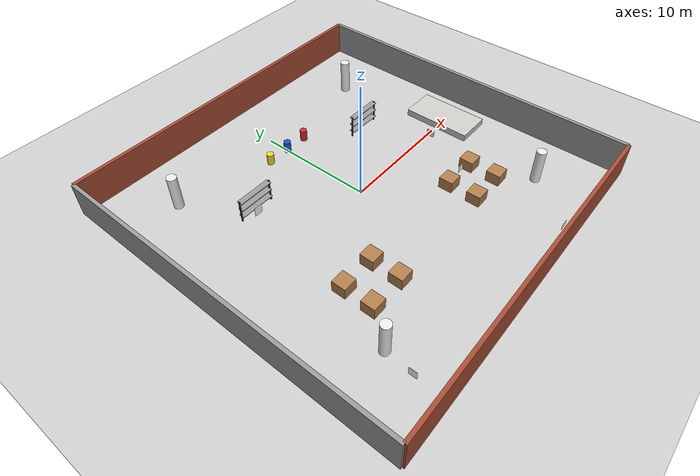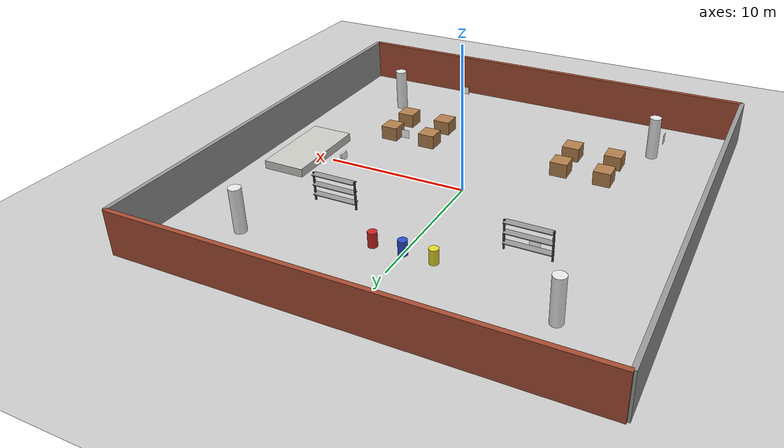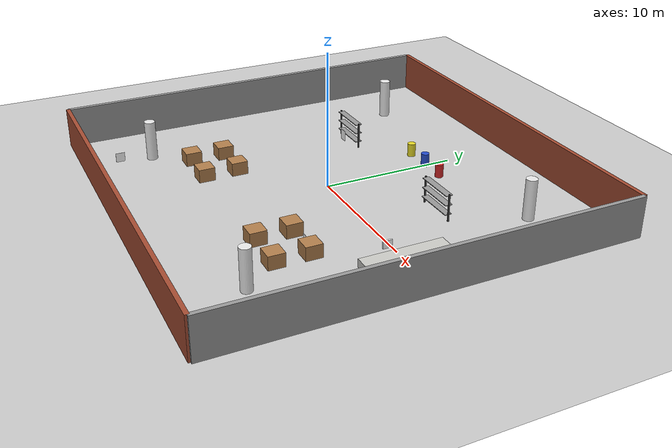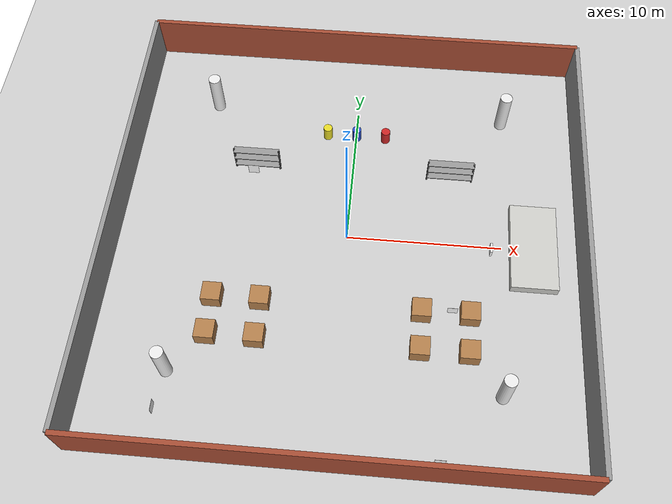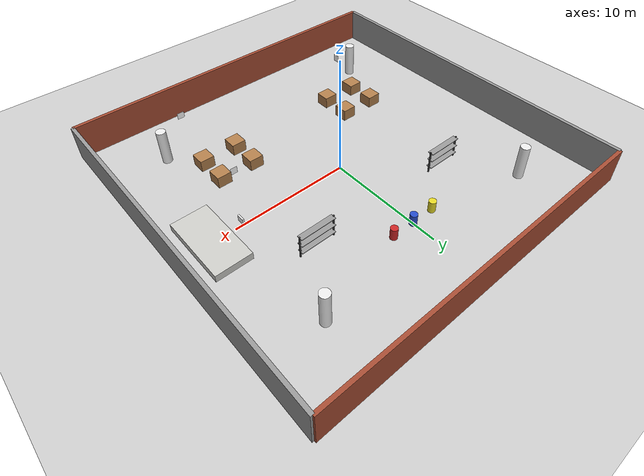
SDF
<sdf version="1.7">
 <world name="entrepot_complet">
  <model name="ground_plane">
   <static>1</static>
   <link name="link">
    <collision name="collision">
     <geometry><plane><normal>0 0 1</normal><size>100 100</size></plane></geometry>
     <surface><friction><ode><mu>100</mu><mu2>50</mu2></ode></friction></surface>
    </collision>
    <visual name="visual">
     <geometry><plane><normal>0 0 1</normal><size>100 100</size></plane></geometry>
     <material>
      <script><uri>file://media/materials/scripts/gazebo.material</uri><name>Gazebo/Grey</name></script>
     </material>
    </visual>
   </link>
  </model>
  <light name="sun" type="directional">
   <pose>0 0 10 0 -0 0</pose>
   <diffuse>0.8 0.8 0.8 1</diffuse>
   <specular>0.2 0.2 0.2 1</specular>
   <attenuation>
    <range>1000</range>
    <constant>0.9</constant>
    <linear>0.01</linear>
    <quadratic>0.001</quadratic>
   </attenuation>
   <direction>-0.5 0.1 -0.9</direction>
   <spot><inner_angle>0</inner_angle><outer_angle>0</outer_angle><falloff>0</falloff></spot>
  </light>
  <scene>
   <ambient>0.6 0.6 0.6 1</ambient>
   <background>0.7 0.8 0.9 1</background>
   <shadows>1</shadows>
   <grid>1</grid>
  </scene>
  <physics type="ode">
   <real_time_update_rate>1000</real_time_update_rate>
   <max_step_size>0.001</max_step_size>
   <real_time_factor>1</real_time_factor>
  </physics>
  <gravity>0 0 -9.8</gravity>
  <model name="wall_north">
   <static>1</static>
   <pose>0 15 1.5 0 -0 0</pose>
   <link name="link">
    <collision name="collision"><geometry><box><size>30 0.3 3</size></box></geometry></collision>
    <visual name="visual">
     <geometry><box><size>30 0.3 3</size></box></geometry>
     <material>
      <script><uri>file://media/materials/scripts/gazebo.material</uri><name>Gazebo/Bricks</name></script>
     </material>
    </visual>
   </link>
  </model>
  <model name="wall_south">
   <static>1</static>
   <pose>0 -15 1.5 0 -0 0</pose>
   <link name="link">
    <collision name="collision"><geometry><box><size>30 0.3 3</size></box></geometry></collision>
    <visual name="visual">
     <geometry><box><size>30 0.3 3</size></box></geometry>
     <material>
      <script><uri>file://media/materials/scripts/gazebo.material</uri><name>Gazebo/Bricks</name></script>
     </material>
    </visual>
   </link>
  </model>
  <model name="wall_east">
   <static>1</static>
   <pose>15 0 1.5 0 -0 0</pose>
   <link name="link">
    <collision name="collision"><geometry><box><size>0.3 30 3</size></box></geometry></collision>
    <visual name="visual">
     <geometry><box><size>0.3 30 3</size></box></geometry>
     <material>
      <script><uri>file://media/materials/scripts/gazebo.material</uri><name>Gazebo/GreyConcrete</name></script>
     </material>
    </visual>
   </link>
  </model>
  <model name="wall_west">
   <static>1</static>
   <pose>-15 0 1.5 0 -0 0</pose>
   <link name="link">
    <collision name="collision"><geometry><box><size>0.3 30 3</size></box></geometry></collision>
    <visual name="visual">
     <geometry><box><size>0.3 30 3</size></box></geometry>
     <material>
      <script><uri>file://media/materials/scripts/gazebo.material</uri><name>Gazebo/GreyConcrete</name></script>
     </material>
    </visual>
   </link>
  </model>
  <model name="column_1">
   <static>1</static>
   <pose>-10 10 1.5 0 -0 0</pose>
   <link name="link">
    <collision name="collision">
     <geometry><cylinder><radius>0.4</radius><length>3</length></cylinder></geometry>
    </collision>
    <visual name="visual">
     <geometry><cylinder><radius>0.4</radius><length>3</length></cylinder></geometry>
     <material>
      <script><uri>file://media/materials/scripts/gazebo.material</uri><name>Gazebo/White</name></script>
     </material>
    </visual>
   </link>
  </model>
  <model name="column_2">
   <static>1</static>
   <pose>10 10 1.5 0 -0 0</pose>
   <link name="link">
    <collision name="collision">
     <geometry><cylinder><radius>0.4</radius><length>3</length></cylinder></geometry>
    </collision>
    <visual name="visual">
     <geometry><cylinder><radius>0.4</radius><length>3</length></cylinder></geometry>
     <material>
      <script><uri>file://media/materials/scripts/gazebo.material</uri><name>Gazebo/White</name></script>
     </material>
    </visual>
   </link>
  </model>
  <model name="column_3">
   <static>1</static>
   <pose>-10 -10 1.5 0 -0 0</pose>
   <link name="link">
    <collision name="collision">
     <geometry><cylinder><radius>0.4</radius><length>3</length></cylinder></geometry>
    </collision>
    <visual name="visual">
     <geometry><cylinder><radius>0.4</radius><length>3</length></cylinder></geometry>
     <material>
      <script><uri>file://media/materials/scripts/gazebo.material</uri><name>Gazebo/White</name></script>
     </material>
    </visual>
   </link>
  </model>
  <model name="column_4">
   <static>1</static>
   <pose>10 -10 1.5 0 -0 0</pose>
   <link name="link">
    <collision name="collision">
     <geometry><cylinder><radius>0.4</radius><length>3</length></cylinder></geometry>
    </collision>
    <visual name="visual">
     <geometry><cylinder><radius>0.4</radius><length>3</length></cylinder></geometry>
     <material>
      <script><uri>file://media/materials/scripts/gazebo.material</uri><name>Gazebo/White</name></script>
     </material>
    </visual>
   </link>
  </model>
  <model name="pallet_1">
   <static>1</static>
   <pose>-8 -5 0.5 0 -0 0</pose>
   <link name="link">
    <collision name="collision"><geometry><box><size>1.2 1.2 1</size></box></geometry></collision>
    <visual name="visual">
     <geometry><box><size>1.2 1.2 1</size></box></geometry>
     <material>
      <script><uri>file://media/materials/scripts/gazebo.material</uri><name>Gazebo/Wood</name></script>
     </material>
    </visual>
   </link>
  </model>
  <model name="pallet_2">
   <static>1</static>
   <pose>-5 -5 0.5 0 -0 0</pose>
   <link name="link">
    <collision name="collision"><geometry><box><size>1.2 1.2 1</size></box></geometry></collision>
    <visual name="visual">
     <geometry><box><size>1.2 1.2 1</size></box></geometry>
     <material>
      <script><uri>file://media/materials/scripts/gazebo.material</uri><name>Gazebo/Wood</name></script>
     </material>
    </visual>
   </link>
  </model>
  <model name="pallet_3">
   <static>1</static>
   <pose>-8 -7.5 0.5 0 -0 0</pose>
   <link name="link">
    <collision name="collision"><geometry><box><size>1.2 1.2 1</size></box></geometry></collision>
    <visual name="visual">
     <geometry><box><size>1.2 1.2 1</size></box></geometry>
     <material>
      <script><uri>file://media/materials/scripts/gazebo.material</uri><name>Gazebo/Wood</name></script>
     </material>
    </visual>
   </link>
  </model>
  <model name="pallet_4">
   <static>1</static>
   <pose>-5 -7.5 0.5 0 -0 0</pose>
   <link name="link">
    <collision name="collision"><geometry><box><size>1.2 1.2 1</size></box></geometry></collision>
    <visual name="visual">
     <geometry><box><size>1.2 1.2 1</size></box></geometry>
     <material>
      <script><uri>file://media/materials/scripts/gazebo.material</uri><name>Gazebo/Wood</name></script>
     </material>
    </visual>
   </link>
  </model>
  <model name="pallet_5">
   <static>1</static>
   <pose>5 -5 0.5 0 -0 0</pose>
   <link name="link">
    <collision name="collision"><geometry><box><size>1.2 1.2 1</size></box></geometry></collision>
    <visual name="visual">
     <geometry><box><size>1.2 1.2 1</size></box></geometry>
     <material>
      <script><uri>file://media/materials/scripts/gazebo.material</uri><name>Gazebo/WoodPallet</name></script>
     </material>
    </visual>
   </link>
  </model>
  <model name="pallet_6">
   <static>1</static>
   <pose>8 -5 0.5 0 -0 0</pose>
   <link name="link">
    <collision name="collision"><geometry><box><size>1.2 1.2 1</size></box></geometry></collision>
    <visual name="visual">
     <geometry><box><size>1.2 1.2 1</size></box></geometry>
     <material>
      <script><uri>file://media/materials/scripts/gazebo.material</uri><name>Gazebo/WoodPallet</name></script>
     </material>
    </visual>
   </link>
  </model>
  <model name="pallet_7">
   <static>1</static>
   <pose>5 -7.5 0.5 0 -0 0</pose>
   <link name="link">
    <collision name="collision"><geometry><box><size>1.2 1.2 1</size></box></geometry></collision>
    <visual name="visual">
     <geometry><box><size>1.2 1.2 1</size></box></geometry>
     <material>
      <script><uri>file://media/materials/scripts/gazebo.material</uri><name>Gazebo/WoodPallet</name></script>
     </material>
    </visual>
   </link>
  </model>
  <model name="pallet_8">
   <static>1</static>
   <pose>8 -7.5 0.5 0 -0 0</pose>
   <link name="link">
    <collision name="collision"><geometry><box><size>1.2 1.2 1</size></box></geometry></collision>
    <visual name="visual">
     <geometry><box><size>1.2 1.2 1</size></box></geometry>
     <material>
      <script><uri>file://media/materials/scripts/gazebo.material</uri><name>Gazebo/WoodPallet</name></script>
     </material>
    </visual>
   </link>
  </model>
  <model name="shelf_1_left">
   <static>1</static>
   <pose>-8 5 1 0 -0 0</pose>
   <link name="link">
    <collision name="collision"><geometry><box><size>0.1 0.1 2</size></box></geometry></collision>
    <visual name="visual">
     <geometry><box><size>0.1 0.1 2</size></box></geometry>
     <material>
      <script><uri>file://media/materials/scripts/gazebo.material</uri><name>Gazebo/DarkGrey</name></script>
     </material>
    </visual>
   </link>
  </model>
  <model name="shelf_1_right">
   <static>1</static>
   <pose>-5 5 1 0 -0 0</pose>
   <link name="link">
    <collision name="collision"><geometry><box><size>0.1 0.1 2</size></box></geometry></collision>
    <visual name="visual">
     <geometry><box><size>0.1 0.1 2</size></box></geometry>
     <material>
      <script><uri>file://media/materials/scripts/gazebo.material</uri><name>Gazebo/DarkGrey</name></script>
     </material>
    </visual>
   </link>
  </model>
  <model name="shelf_1_bottom">
   <static>1</static>
   <pose>-6.5 5 0.5 0 -0 0</pose>
   <link name="link">
    <collision name="collision"><geometry><box><size>3 0.5 0.05</size></box></geometry></collision>
    <visual name="visual">
     <geometry><box><size>3 0.5 0.05</size></box></geometry>
     <material>
      <script><uri>file://media/materials/scripts/gazebo.material</uri><name>Gazebo/Grey</name></script>
     </material>
    </visual>
   </link>
  </model>
  <model name="shelf_1_middle">
   <static>1</static>
   <pose>-6.5 5 1.2 0 -0 0</pose>
   <link name="link">
    <collision name="collision"><geometry><box><size>3 0.5 0.05</size></box></geometry></collision>
    <visual name="visual">
     <geometry><box><size>3 0.5 0.05</size></box></geometry>
     <material>
      <script><uri>file://media/materials/scripts/gazebo.material</uri><name>Gazebo/Grey</name></script>
     </material>
    </visual>
   </link>
  </model>
  <model name="shelf_1_top">
   <static>1</static>
   <pose>-6.5 5 1.9 0 -0 0</pose>
   <link name="link">
    <collision name="collision"><geometry><box><size>3 0.5 0.05</size></box></geometry></collision>
    <visual name="visual">
     <geometry><box><size>3 0.5 0.05</size></box></geometry>
     <material>
      <script><uri>file://media/materials/scripts/gazebo.material</uri><name>Gazebo/Grey</name></script>
     </material>
    </visual>
   </link>
  </model>
  <model name="shelf_2_left">
   <static>1</static>
   <pose>5 5 1 0 -0 0</pose>
   <link name="link">
    <collision name="collision"><geometry><box><size>0.1 0.1 2</size></box></geometry></collision>
    <visual name="visual">
     <geometry><box><size>0.1 0.1 2</size></box></geometry>
     <material>
      <script><uri>file://media/materials/scripts/gazebo.material</uri><name>Gazebo/DarkGrey</name></script>
     </material>
    </visual>
   </link>
  </model>
  <model name="shelf_2_right">
   <static>1</static>
   <pose>8 5 1 0 -0 0</pose>
   <link name="link">
    <collision name="collision"><geometry><box><size>0.1 0.1 2</size></box></geometry></collision>
    <visual name="visual">
     <geometry><box><size>0.1 0.1 2</size></box></geometry>
     <material>
      <script><uri>file://media/materials/scripts/gazebo.material</uri><name>Gazebo/DarkGrey</name></script>
     </material>
    </visual>
   </link>
  </model>
  <model name="shelf_2_bottom">
   <static>1</static>
   <pose>6.5 5 0.5 0 -0 0</pose>
   <link name="link">
    <collision name="collision"><geometry><box><size>3 0.5 0.05</size></box></geometry></collision>
    <visual name="visual">
     <geometry><box><size>3 0.5 0.05</size></box></geometry>
     <material>
      <script><uri>file://media/materials/scripts/gazebo.material</uri><name>Gazebo/Grey</name></script>
     </material>
    </visual>
   </link>
  </model>
  <model name="shelf_2_middle">
   <static>1</static>
   <pose>6.5 5 1.2 0 -0 0</pose>
   <link name="link">
    <collision name="collision"><geometry><box><size>3 0.5 0.05</size></box></geometry></collision>
    <visual name="visual">
     <geometry><box><size>3 0.5 0.05</size></box></geometry>
     <material>
      <script><uri>file://media/materials/scripts/gazebo.material</uri><name>Gazebo/Grey</name></script>
     </material>
    </visual>
   </link>
  </model>
  <model name="shelf_2_top">
   <static>1</static>
   <pose>6.5 5 1.9 0 -0 0</pose>
   <link name="link">
    <collision name="collision"><geometry><box><size>3 0.5 0.05</size></box></geometry></collision>
    <visual name="visual">
     <geometry><box><size>3 0.5 0.05</size></box></geometry>
     <material>
      <script><uri>file://media/materials/scripts/gazebo.material</uri><name>Gazebo/Grey</name></script>
     </material>
    </visual>
   </link>
  </model>
  <model name="barrel_1">
   <static>1</static>
   <pose>-2 8 0.5 0 -0 0</pose>
   <link name="link">
    <collision name="collision">
     <geometry><cylinder><radius>0.3</radius><length>1</length></cylinder></geometry>
    </collision>
    <visual name="visual">
     <geometry><cylinder><radius>0.3</radius><length>1</length></cylinder></geometry>
     <material>
      <script><uri>file://media/materials/scripts/gazebo.material</uri><name>Gazebo/Yellow</name></script>
     </material>
    </visual>
   </link>
  </model>
  <model name="barrel_2">
   <static>1</static>
   <pose>0 8 0.5 0 -0 0</pose>
   <link name="link">
    <collision name="collision">
     <geometry><cylinder><radius>0.3</radius><length>1</length></cylinder></geometry>
    </collision>
    <visual name="visual">
     <geometry><cylinder><radius>0.3</radius><length>1</length></cylinder></geometry>
     <material>
      <script><uri>file://media/materials/scripts/gazebo.material</uri><name>Gazebo/Blue</name></script>
     </material>
    </visual>
   </link>
  </model>
  <model name="barrel_3">
   <static>1</static>
   <pose>2 8 0.5 0 -0 0</pose>
   <link name="link">
    <collision name="collision">
     <geometry><cylinder><radius>0.3</radius><length>1</length></cylinder></geometry>
    </collision>
    <visual name="visual">
     <geometry><cylinder><radius>0.3</radius><length>1</length></cylinder></geometry>
     <material>
      <script><uri>file://media/materials/scripts/gazebo.material</uri><name>Gazebo/Red</name></script>
     </material>
    </visual>
   </link>
  </model>
  <model name="loading_dock">
   <static>1</static>
   <pose>12 0 0.3 0 -0 0</pose>
   <link name="link">
    <collision name="collision"><geometry><box><size>3 6 0.6</size></box></geometry></collision>
    <visual name="visual">
     <geometry><box><size>3 6 0.6</size></box></geometry>
     <material>
      <script><uri>file://media/materials/scripts/gazebo.material</uri><name>Gazebo/CeilingTiled</name></script>
     </material>
    </visual>
   </link>
  </model>
  <magnetic_field>6e-06 2.3e-05 -4.2e-05</magnetic_field>
  <atmosphere type="adiabatic"/>
  <audio><device>default</device></audio>
  <spherical_coordinates>
   <surface_model>EARTH_WGS84</surface_model>
   <latitude_deg>0</latitude_deg>
   <longitude_deg>0</longitude_deg>
   <elevation>0</elevation>
   <heading_deg>0</heading_deg>
  </spherical_coordinates>
  <model name="Apriltag36_11_0005">
   <link name="main">
    <pose>0 0 0.31 0 1.57 0</pose>
    <inertial>
     <mass>1</mass>
     <inertia><ixx>1</ixx><ixy>0</ixy><ixz>0</ixz><iyy>1</iyy><iyz>0</iyz><izz>1</izz></inertia>
    </inertial>
    <visual name="main_Visual">
     <geometry><box><size>0.558357 0.656358 0.127597</size></box></geometry>
     <material>
      <script>
       <uri>model://Apriltag36_11_00005/materials/scripts</uri>
       <uri>model://Apriltag36_11_00005/materials/textures</uri>
       <name>Apriltag36_11_00005</name>
      </script>
      <shader type="pixel"><normal_map>__default__</normal_map></shader>
      <ambient>1 1 1 1</ambient>
      <diffuse>1 1 1 1</diffuse>
      <specular>0 0 0 1</specular>
      <emissive>0 0 0 1</emissive>
     </material>
    </visual>
   </link>
   <static>1</static>
   <pose>9.29759 -0.29489 -0 0 -0 0</pose>
  </model>
  <model name="Apriltag36_11_00006">
   <link name="main">
    <pose>-0.02 0.04 0.5 1.57 -0 0</pose>
    <inertial>
     <mass>1</mass>
     <inertia><ixx>1</ixx><ixy>0</ixy><ixz>0</ixz><iyy>1</iyy><iyz>0</iyz><izz>1</izz></inertia>
    </inertial>
    <visual name="main_Visual">
     <geometry><box><size>0.621555 0.62912 0.01</size></box></geometry>
     <material>
      <script>
       <uri>model://Apriltag36_11_00006/materials/scripts</uri>
       <uri>model://Apriltag36_11_00006/materials/textures</uri>
       <name>Apriltag36_11_00006</name>
      </script>
      <shader type="pixel"><normal_map>__default__</normal_map></shader>
      <ambient>1 1 1 1</ambient>
      <diffuse>1 1 1 1</diffuse>
      <specular>0 0 0 1</specular>
      <emissive>0 0 0 1</emissive>
     </material>
    </visual>
   </link>
   <static>1</static>
   <pose>6.92633 -4.91158 -0 0 -0 0</pose>
  </model>
  <model name="Apriltag36_11_00007">
   <link name="main">
    <pose>-0.02 -0.15 0.45 1.57 -0 0</pose>
    <inertial>
     <mass>1</mass>
     <inertia><ixx>1</ixx><ixy>0</ixy><ixz>0</ixz><iyy>1</iyy><iyz>0</iyz><izz>1</izz></inertia>
    </inertial>
    <visual name="main_Visual">
     <geometry><box><size>0.648668 0.580426 0.01</size></box></geometry>
     <material>
      <script>
       <uri>model://Apriltag36_11_00007/materials/scripts</uri>
       <uri>model://Apriltag36_11_00007/materials/textures</uri>
       <name>Apriltag36_11_00007</name>
      </script>
      <shader type="pixel"><normal_map>__default__</normal_map></shader>
      <ambient>1 1 1 1</ambient>
      <diffuse>1 1 1 1</diffuse>
      <specular>0 0 0 1</specular>
      <emissive>0 0 0 1</emissive>
     </material>
    </visual>
   </link>
   <static>1</static>
   <pose>6.43134 -13.9853 -0 0 -0 0</pose>
  </model>
  <model name="Apriltag36_11_00008">
   <link name="main">
    <pose>1 0 0.4 0 1.57 0</pose>
    <inertial>
     <mass>1</mass>
     <inertia><ixx>1</ixx><ixy>0</ixy><ixz>0</ixz><iyy>1</iyy><iyz>0</iyz><izz>1</izz></inertia>
    </inertial>
    <visual name="main_Visual">
     <geometry><box><size>0.695089 0.676083 0.01</size></box></geometry>
     <material>
      <script>
       <uri>model://Apriltag36_11_00008/materials/scripts</uri>
       <uri>model://Apriltag36_11_00008/materials/textures</uri>
       <name>Apriltag36_11_00008</name>
      </script>
      <shader type="pixel"><normal_map>__default__</normal_map></shader>
      <ambient>1 1 1 1</ambient>
      <diffuse>1 1 1 1</diffuse>
      <specular>0 0 0 1</specular>
      <emissive>0 0 0 1</emissive>
     </material>
    </visual>
   </link>
   <static>1</static>
   <pose>-11.3161 -12.3547 -0 0 -0 0</pose>
  </model>
  <model name="Apriltag36_11_00009">
   <link name="main">
    <pose>0 0 0.45 1.57 -0 0</pose>
    <inertial>
     <mass>1</mass>
     <inertia><ixx>1</ixx><ixy>0</ixy><ixz>0</ixz><iyy>1</iyy><iyz>0</iyz><izz>1</izz></inertia>
    </inertial>
    <visual name="main_Visual">
     <geometry><box><size>0.70982 0.825785 0.01</size></box></geometry>
     <material>
      <script>
       <uri>model://Apriltag36_11_00009/materials/scripts</uri>
       <uri>model://Apriltag36_11_00009/materials/textures</uri>
       <name>Apriltag36_11_00009</name>
      </script>
      <shader type="pixel"><normal_map>__default__</normal_map></shader>
      <ambient>1 1 1 1</ambient>
      <diffuse>1 1 1 1</diffuse>
      <specular>0 0 0 1</specular>
      <emissive>0 0 0 1</emissive>
     </material>
    </visual>
   </link>
   <static>1</static>
   <pose>-6.74371 4.53811 -0 0 -0 0</pose>
  </model>
 </world>
</sdf>
